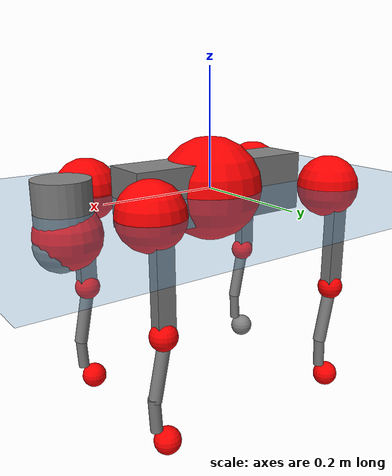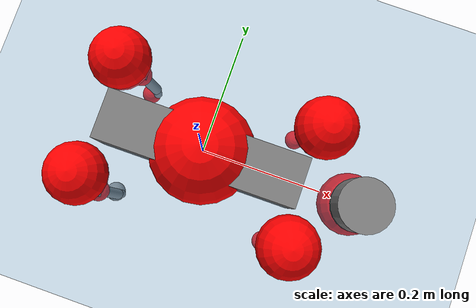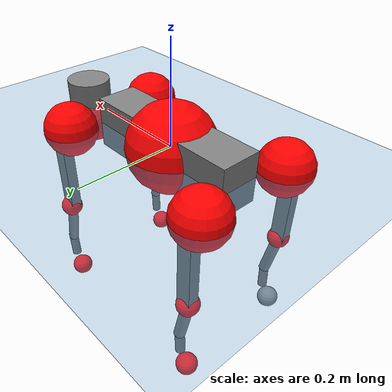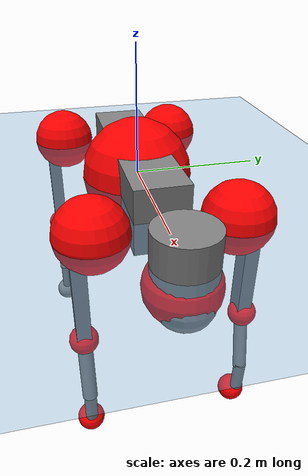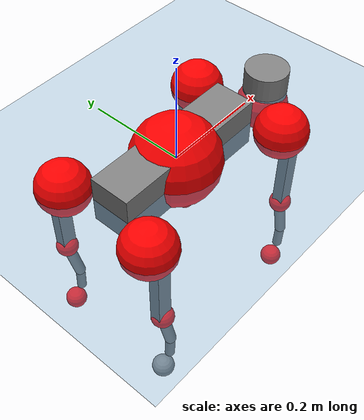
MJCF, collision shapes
<mujoco model="go2">
  <compiler angle="radian" assetdir="assets" balanceinertia="true" inertiafromgeom="false"/>

  <option timestep="0.005" density="1.2" viscosity="2e-05"/>

  <size nkey="1"/>

  <visual>
    <quality shadowsize="8192"/>
    <map shadowclip="0.5"/>
  </visual>

  <default>
    <default class="/">
      <geom contype="0" conaffinity="0" group="1" solref="-1000 -80"/>
      <site size="0.01 0.005 0.005" group="5"/>
      <general forcelimited="true" biastype="affine" gainprm="20" biasprm="0 -20 -0.5"/>
      <default class="go2">
        <joint armature="0.01" damping="0.01" frictionloss="0.2"/>
        <geom condim="1" margin="0.001"/>
        <default class="visual">
          <geom type="mesh" group="2"/>
        </default>
        <default class="collision">
          <geom group="3"/>
          <default class="foot">
            <geom size="0.022 0 0" condim="6" priority="1" friction="0.8 0.02 0.01" solimp="0.015 1 0.022"/>
          </default>
        </default>
        <default class="reward_collision_sphere">
          <geom group="5" rgba="1 0 0 1"/>
        </default>
      </default>
    </default>
  </default>

  <asset>
    <texture type="skybox" colorspace="auto" name="//unnamed_texture_0" builtin="gradient" rgb1="0.95 0.95 0.95" rgb2="0.95 0.95 0.95" width="100" height="600"/>
    <texture type="2d" colorspace="auto" name="texplane" builtin="checker" rgb1="0.345 0.575 0.748" rgb2="0.345 0.575 0.748" markrgb="1 1 1" width="512" height="512"/>
    <material name="MatPlane" class="/" texture="texplane" texuniform="true" texrepeat="2 2" specular="0.9"/>
    <material name="metal" class="/" rgba="0.9 0.95 0.95 1"/>
    <material name="black" class="/" rgba="0 0 0 1"/>
    <material name="white" class="/"/>
    <material name="gray" class="/" rgba="0.671705 0.692426 0.77427 1"/>
    <mesh name="base_0" class="/" file="base_0.obj"/>
    <mesh name="base_1" class="/" file="base_1.obj"/>
    <mesh name="base_2" class="/" file="base_2.obj"/>
    <mesh name="base_3" class="/" file="base_3.obj"/>
    <mesh name="base_4" class="/" file="base_4.obj"/>
    <mesh name="hip_0" class="/" file="hip_0.obj"/>
    <mesh name="hip_1" class="/" file="hip_1.obj"/>
    <mesh name="thigh_0" class="/" file="thigh_0.obj"/>
    <mesh name="thigh_1" class="/" file="thigh_1.obj"/>
    <mesh name="thigh_mirror_0" class="/" file="thigh_mirror_0.obj"/>
    <mesh name="thigh_mirror_1" class="/" file="thigh_mirror_1.obj"/>
    <mesh name="calf_0" class="/" file="calf_0.obj"/>
    <mesh name="calf_1" class="/" file="calf_1.obj"/>
    <mesh name="calf_mirror_0" class="/" file="calf_mirror_0.obj"/>
    <mesh name="calf_mirror_1" class="/" file="calf_mirror_1.obj"/>
    <mesh name="foot" class="/" file="foot.obj"/>
  </asset>

  <worldbody>
    <geom name="floor" class="/" size="100 100 0.125" type="plane" group="0" material="MatPlane"/>
    <light name="toplight_shadow" class="/" pos="0 0 5" dir="0.0990148 0.0990148 -0.990148" type="directional" ambient="0.04 0.04 0.04" diffuse="0.55 0.55 0.55" specular="0.12 0.12 0.12"/>
    <light name="toplight_fill" class="/" pos="0 0 5" dir="0.0990148 0.0990148 -0.990148" type="directional" castshadow="false" ambient="0.04 0.04 0.04" diffuse="0.3 0.3 0.3" specular="0.08 0.08 0.08"/>
    <body name="trunk" childclass="go2" pos="-0.00176556 -0.000528869 -0.00036757" quat="1 0.000130761 1.16423e-05 0.000619794">
      <inertial pos="0.0191765 0.000368813 -0.00420559" quat="0.00424218 0.707267 -0.00727231 0.706897" mass="4.73293" diaginertia="0.0786876 0.0502167 0.0104907"/>
      <joint name="//unnamed_joint_0" type="free" armature="0" damping="0" frictionloss="0"/>
      <geom name="//unnamed_geom_1" class="visual" material="black" mesh="base_0"/>
      <geom name="//unnamed_geom_2" class="visual" material="black" mesh="base_1"/>
      <geom name="//unnamed_geom_3" class="visual" material="black" mesh="base_2"/>
      <geom name="//unnamed_geom_4" class="visual" material="white" mesh="base_3"/>
      <geom name="//unnamed_geom_5" class="visual" material="gray" mesh="base_4"/>
      <geom name="trunk_1" class="collision" size="0.166323 0.0413376 0.0504009" type="box"/>
      <geom name="trunk_2" class="collision" size="0.0442113 0.0397902" pos="0.266962 0 0.00841237" type="cylinder"/>
      <geom name="trunk_3" class="collision" size="0.0415586" pos="0.274456 0 -0.0504742"/>
      <geom name="//unnamed_geom_9" class="reward_collision_sphere" size="0.0884226"/>
      <geom name="//unnamed_geom_10" class="reward_collision_sphere" size="0.0530536" pos="0.262279 0 -0.0378557"/>
      <site name="imu" pos="-0.020322 -0.0130589 0.0388989" size="0.00884226"/>
      <camera name="track" pos="0 -1.74946 0" quat="0.707107 0.707107 0 0" mode="trackcom"/>
      <camera name="ego_camera" pos="0.292253 0 0.0378557" quat="-0.5 -0.5 0.5 0.5"/>
      <body name="FL_hip" pos="0.180389 0.0421369 0.000813013" quat="0.999999 0.000369242 0.00143165 -8.60865e-05">
        <inertial pos="-0.00543385 0.00218293 0.000934732" quat="0.502631 0.492952 0.50302 0.50133" mass="0.48384" diaginertia="0.000659283 0.000314202 0.000210077"/>
        <joint name="FL_hip_joint" pos="0 0 0" axis="0.999953 0.00973648 -6.25017e-05" range="-0.995567 1.05508" armature="0.00977258" damping="0.000414356" frictionloss="0.182441"/>
        <geom name="//unnamed_geom_11" class="visual" material="metal" mesh="hip_0"/>
        <geom name="//unnamed_geom_12" class="visual" material="gray" mesh="hip_1"/>
        <geom name="//unnamed_geom_13" class="collision" size="0.0406744 0.0176845" pos="0 0.0699785 0" quat="0.707107 0.707107 0 0" type="cylinder"/>
        <geom name="//unnamed_geom_14" class="reward_collision_sphere" size="0.0530536" pos="0 0.0612312 0"/>
        <body name="FL_thigh" pos="-0.00143128 0.0843278 0.00119533" quat="1 -1.98598e-05 -4.90279e-05 -2.7812e-05">
          <inertial pos="-0.00389167 -0.0219531 -0.030065" quat="0.829622 0.0884059 -0.0233682 0.550786" mass="0.81013" diaginertia="0.00427679 0.00298679 0.000368427"/>
          <joint name="FL_thigh_joint" pos="0 0 0" axis="-0.000173388 1 -5.55249e-05" stiffness="0.00190057" range="-1.56974 3.54274" armature="0.00866157" damping="0" frictionloss="0.177057"/>
          <geom name="//unnamed_geom_15" class="visual" material="metal" mesh="thigh_0"/>
          <geom name="//unnamed_geom_16" class="visual" material="gray" mesh="thigh_1"/>
          <geom name="//unnamed_geom_17" class="collision" size="0.0941701 0.0108318 0.0150318" pos="0 0 -0.0895917" quat="0.707107 0 0.707107 0" type="box"/>
          <body name="FL_calf" pos="0.00240469 0.00244854 -0.177668" quat="1 4.65217e-05 7.12548e-05 -3.69032e-05">
            <inertial pos="0.00696633 -0.000935189 -0.117044" quat="0.71061 0.00171437 -0.00456013 0.703569" mass="0.172848" diaginertia="0.00109955 0.000761577 2.24779e-05"/>
            <joint name="FL_calf_joint" pos="0 0 0" axis="-0.00412174 0.999989 0.00232044" range="-2.69629 -0.886735" armature="0.00867988" damping="0" frictionloss="0.179544"/>
            <geom name="//unnamed_geom_18" class="visual" material="gray" mesh="calf_0"/>
            <geom name="//unnamed_geom_19" class="visual" material="black" mesh="calf_1"/>
            <geom name="FL_calf0" class="collision" size="0.0106107 0.0530536" pos="0.00749368 0 -0.0504742" quat="0.994493 0 -0.104807 0" type="cylinder"/>
            <geom name="//unnamed_geom_21" class="collision" size="0.00972649 0.0287373" pos="0.0187342 0 -0.124503" quat="0.999688 0 0.0249974 0" type="cylinder"/>
            <geom name="//unnamed_geom_22" class="visual" pos="0 0 -0.179183" quat="1 0 0 0" material="black" mesh="foot"/>
            <geom name="FL_foot" class="foot" size="0.0169422" pos="-0.00187342 0 -0.179183"/>
            <geom name="//unnamed_geom_24" class="reward_collision_sphere" size="0.0221057"/>
            <geom name="//unnamed_geom_25" class="reward_collision_sphere" size="0.0221057" pos="-0.00187342 0 -0.179183"/>
            <site name="FL_foot" class="foot" pos="-0.00187342 0 -0.179183" size="0.00884226"/>
          </body>
        </body>
      </body>
      <body name="FR_hip" pos="0.182359 -0.0395155 0.00294412" quat="1 -8.90884e-05 -0.000164127 -0.000225512">
        <inertial pos="-0.00380109 -0.00311752 0.000296985" quat="0.49108 0.515198 0.50132 0.492026" mass="0.484865" diaginertia="0.000654769 0.000314235 0.000206673"/>
        <joint name="FR_hip_joint" pos="0 0 0" axis="0.999993 -0.00334054 -0.00163459" range="-1.00998 1.05748" armature="0.00887759" damping="0.0135029" frictionloss="0.169921"/>
        <geom name="//unnamed_geom_26" class="visual" pos="0 2.9179e-10 1.25155e-08" quat="4.63268e-05 1 0 0" material="metal" mesh="hip_0"/>
        <geom name="//unnamed_geom_27" class="visual" pos="0 4.73027e-10 -3.09556e-08" quat="4.63268e-05 1 0 0" material="gray" mesh="hip_1"/>
        <geom name="//unnamed_geom_28" class="collision" size="0.0406744 0.0176845" pos="0 -0.0699785 0" quat="0.707107 0.707107 0 0" type="cylinder"/>
        <geom name="//unnamed_geom_29" class="reward_collision_sphere" size="0.0530536" pos="0 -0.0612312 0"/>
        <body name="FR_thigh" pos="0.000857779 -0.0832328 -0.00147842" quat="1 -0.000145034 -1.92304e-05 -0.000456307">
          <inertial pos="-0.00322492 0.019494 -0.0301037" quat="0.544331 -0.0117676 0.0896876 0.833979" mass="0.813495" diaginertia="0.00440517 0.0030939 0.000383009"/>
          <joint name="FR_thigh_joint" pos="0 0 0" axis="-0.00317264 -0.999994 0.00119918" stiffness="0.00213574" range="-3.54399 1.61335" armature="0.00793719" damping="0.0126007" frictionloss="0.167635"/>
          <geom name="//unnamed_geom_30" class="visual" material="metal" mesh="thigh_mirror_0"/>
          <geom name="//unnamed_geom_31" class="visual" material="gray" mesh="thigh_mirror_1"/>
          <geom name="//unnamed_geom_32" class="collision" size="0.0941701 0.0108318 0.0150318" pos="0 0 -0.0895917" quat="0.707107 0 0.707107 0" type="box"/>
          <body name="FR_calf" pos="-0.000564518 0.000145303 -0.179214" quat="1 9.11615e-05 -2.6698e-05 4.47802e-05">
            <inertial pos="0.00489905 0.00086178 -0.116549" quat="0.701903 -0.0037602 0.0036244 0.712253" mass="0.157266" diaginertia="0.00103599 0.000749348 2.09629e-05"/>
            <joint name="FR_calf_joint" pos="0 0 0" axis="0.00153601 -0.999987 0.00495542" stiffness="0.00261435" range="0.838858 2.71395" armature="0.00972378" damping="0.0143714" frictionloss="0.176174"/>
            <geom name="//unnamed_geom_33" class="visual" material="gray" mesh="calf_mirror_0"/>
            <geom name="//unnamed_geom_34" class="visual" material="black" mesh="calf_mirror_1"/>
            <geom name="FR_calf0" class="collision" size="0.0114949 0.0530536" pos="0.0093671 0 -0.0504742" quat="0.995004 0 -0.0998334 0" type="cylinder"/>
            <geom name="//unnamed_geom_36" class="collision" size="0.00972649 0.0287373" pos="0.0187342 0 -0.124503" quat="0.999688 0 0.0249974 0" type="cylinder"/>
            <geom name="//unnamed_geom_37" class="visual" pos="0 0 -0.179183" quat="1 0 0 0" material="black" mesh="foot"/>
            <geom name="FR_foot" class="foot" size="0.0212734" pos="-0.00187342 0 -0.179183"/>
            <geom name="//unnamed_geom_39" class="reward_collision_sphere" size="0.0221057"/>
            <geom name="//unnamed_geom_40" class="reward_collision_sphere" size="0.0221057" pos="-0.00187342 0 -0.179183"/>
            <site name="FR_foot" class="foot" pos="-0.00187342 0 -0.179183" size="0.00884226"/>
          </body>
        </body>
      </body>
      <body name="RL_hip" pos="-0.179993 0.0400763 -0.00178757" quat="1 -0.000235747 0.000167146 -3.69373e-05">
        <inertial pos="0.00488423 0.00224385 -0.00231154" quat="0.506288 0.497887 0.49545 0.50031" mass="0.485678" diaginertia="0.000659492 0.000300461 0.000203594"/>
        <joint name="RL_hip_joint" pos="0 0 0" axis="-0.999752 0.00991094 -0.0199406" range="-0.994331 1.09829" armature="0.00888133" damping="0" frictionloss="0.199826"/>
        <geom name="//unnamed_geom_41" class="visual" pos="-8.31719e-10 0 -1.63036e-07" quat="4.63268e-05 0 1 0" material="metal" mesh="hip_0"/>
        <geom name="//unnamed_geom_42" class="visual" pos="-1.34832e-09 0 -1.4459e-07" quat="4.63268e-05 0 1 0" material="gray" mesh="hip_1"/>
        <geom name="//unnamed_geom_43" class="collision" size="0.0406744 0.0176845" pos="0 0.0699785 0" quat="0.707107 0.707107 0 0" type="cylinder"/>
        <geom name="//unnamed_geom_44" class="reward_collision_sphere" size="0.0530536" pos="0 0.0612312 0"/>
        <body name="RL_thigh" pos="0.000661471 0.0841488 -0.000625459" quat="1 -3.44561e-06 -2.32847e-06 1.49427e-05">
          <inertial pos="-0.00600985 -0.0195096 -0.0302002" quat="0.823431 0.0793761 -0.018544 0.561531" mass="0.802148" diaginertia="0.00413245 0.00299775 0.000356784"/>
          <joint name="RL_thigh_joint" pos="0 0 0" axis="0.00850685 0.999874 -0.0134268" stiffness="0.00366256" range="-0.574711 4.55984" armature="0.00859639" damping="0.0026686" frictionloss="0.17661"/>
          <geom name="//unnamed_geom_45" class="visual" material="metal" mesh="thigh_0"/>
          <geom name="//unnamed_geom_46" class="visual" material="gray" mesh="thigh_1"/>
          <geom name="//unnamed_geom_47" class="collision" size="0.0941701 0.0108318 0.0150318" pos="0 0 -0.0895917" quat="0.707107 0 0.707107 0" type="box"/>
          <body name="RL_calf" pos="-0.000834824 -0.00138739 -0.181649" quat="1 -6.38591e-05 -2.64973e-05 -9.26502e-05">
            <inertial pos="0.00656658 -0.00153065 -0.117506" quat="0.70476 0.00426028 0.00237498 0.709429" mass="0.162131" diaginertia="0.00107148 0.000742811 2.25067e-05"/>
            <joint name="RL_calf_joint" pos="0 0 0" axis="0.00874158 0.999959 0.00251001" range="-2.741 -0.836353" armature="0.00881118" damping="0.000530768" frictionloss="0.185263"/>
            <geom name="//unnamed_geom_48" class="visual" material="gray" mesh="calf_0"/>
            <geom name="//unnamed_geom_49" class="visual" material="black" mesh="calf_1"/>
            <geom name="RL_calf0" class="collision" size="0.0114949 0.0530536" pos="0.0093671 0 -0.0504742" quat="0.995004 0 -0.0998334 0" type="cylinder"/>
            <geom name="//unnamed_geom_51" class="collision" size="0.00972649 0.0287373" pos="0.0187342 0 -0.124503" quat="0.999688 0 0.0249974 0" type="cylinder"/>
            <geom name="//unnamed_geom_52" class="visual" pos="0 0 -0.179183" quat="1 0 0 0" material="black" mesh="foot"/>
            <geom name="RL_foot" class="foot" size="0.01796" pos="-0.00187342 0 -0.179183"/>
            <geom name="//unnamed_geom_54" class="reward_collision_sphere" size="0.0221057"/>
            <geom name="//unnamed_geom_55" class="reward_collision_sphere" size="0.0221057" pos="-0.00187342 0 -0.179183"/>
            <site name="RL_foot" class="foot" pos="-0.00187342 0 -0.179183" size="0.00884226"/>
          </body>
        </body>
      </body>
      <body name="RR_hip" pos="-0.18107 -0.0410523 -0.000215733" quat="1 -3.89617e-05 1.30986e-05 3.31789e-05">
        <inertial pos="0.00531512 0.00095596 -0.00198205" quat="0.49931 0.497111 0.497916 0.505618" mass="0.452382" diaginertia="0.000622303 0.00029851 0.000195449"/>
        <joint name="RR_hip_joint" pos="0 0 0" axis="-0.999998 0.00140855 -0.00114728" range="-1.05484 1.00241" armature="0.00857244" damping="0" frictionloss="0.170774"/>
        <geom name="//unnamed_geom_56" class="visual" pos="8.29573e-10 2.9179e-10 -1.75552e-07" quat="2.14617e-09 4.63268e-05 4.63268e-05 -1" material="metal" mesh="hip_0"/>
        <geom name="//unnamed_geom_57" class="visual" pos="1.35362e-09 4.73027e-10 -1.13634e-07" quat="2.14617e-09 4.63268e-05 4.63268e-05 -1" material="gray" mesh="hip_1"/>
        <geom name="//unnamed_geom_58" class="collision" size="0.0406744 0.0176845" pos="0 -0.0699785 0" quat="0.707107 0.707107 0 0" type="cylinder"/>
        <geom name="//unnamed_geom_59" class="reward_collision_sphere" size="0.0530536" pos="0 -0.0612312 0"/>
        <body name="RR_thigh" pos="-0.00100789 -0.084659 0.00180579" quat="1 9.99014e-05 -0.000133187 0.000406266">
          <inertial pos="-0.00453029 0.0215008 -0.0275046" quat="0.550971 -0.0192675 0.0846734 0.829994" mass="0.751016" diaginertia="0.00416599 0.00290255 0.000369676"/>
          <joint name="RR_thigh_joint" pos="0 0 0" axis="0.00574133 -0.99998 -0.00282557" stiffness="0.00650308" range="-4.59057 0.575658" armature="0.00913094" damping="0.0118539" frictionloss="0.156011"/>
          <geom name="//unnamed_geom_60" class="visual" material="metal" mesh="thigh_mirror_0"/>
          <geom name="//unnamed_geom_61" class="visual" material="gray" mesh="thigh_mirror_1"/>
          <geom name="//unnamed_geom_62" class="collision" size="0.0941701 0.0108318 0.0150318" pos="0 0 -0.0895917" quat="0.707107 0 0.707107 0" type="box"/>
          <body name="RR_calf" pos="0.00315223 -0.00139535 -0.180108" quat="1 -0.00029049 5.30823e-05 -0.000329027">
            <inertial pos="0.00495011 0.000665727 -0.119212" quat="0.704843 -0.00700041 0.00130449 0.709327" mass="0.159672" diaginertia="0.00106792 0.000733656 2.20951e-05"/>
            <joint name="RR_calf_joint" pos="0 0 0" axis="-0.000663366 -0.999999 0.00128735" range="0.829049 2.74284" armature="0.00882783" damping="0.00366385" frictionloss="0.174816"/>
            <geom name="//unnamed_geom_63" class="visual" material="gray" mesh="calf_mirror_0"/>
            <geom name="//unnamed_geom_64" class="visual" material="black" mesh="calf_mirror_1"/>
            <geom name="RR_calf0" class="collision" size="0.0114949 0.0530536" pos="0.0093671 0 -0.0504742" quat="0.995004 0 -0.0998334 0" type="cylinder"/>
            <geom name="//unnamed_geom_66" class="collision" size="0.00972649 0.0287373" pos="0.0187342 0 -0.124503" quat="0.999688 0 0.0249974 0" type="cylinder"/>
            <geom name="//unnamed_geom_67" class="visual" pos="0 0 -0.179183" quat="1 0 0 0" material="black" mesh="foot"/>
            <geom name="RR_foot" class="foot" size="0.0224091" pos="-0.00187342 0 -0.179183"/>
            <geom name="//unnamed_geom_69" class="reward_collision_sphere" size="0.0221057"/>
            <geom name="//unnamed_geom_70" class="reward_collision_sphere" size="0.0221057" pos="-0.00187342 0 -0.179183"/>
            <site name="RR_foot" class="foot" pos="-0.00187342 0 -0.179183" size="0.00884226"/>
          </body>
        </body>
      </body>
    </body>
  </worldbody>

  <contact>
    <pair class="/" geom1="floor" geom2="FL_foot" name="//unnamed_contact_0"/>
    <pair class="/" geom1="floor" geom2="FR_foot" name="//unnamed_contact_1"/>
    <pair class="/" geom1="floor" geom2="RL_foot" name="//unnamed_contact_2"/>
    <pair class="/" geom1="floor" geom2="RR_foot" name="//unnamed_contact_3"/>
  </contact>

  <actuator>
    <general name="FL_hip" class="/" joint="FL_hip_joint" forcerange="-20.4157 20.4157" gainprm="18.1446" biasprm="0 -18.1446 -0.470634"/>
    <general name="FL_thigh" class="/" joint="FL_thigh_joint" forcerange="-22.9154 22.9154" gainprm="18.1446" biasprm="0 -18.1446 -0.470634"/>
    <general name="FL_calf" class="/" joint="FL_calf_joint" forcerange="-36.1695 36.1695" gainprm="18.1446" biasprm="0 -18.1446 -0.470634"/>
    <general name="FR_hip" class="/" joint="FR_hip_joint" forcerange="-20.9679 20.9679" gainprm="18.1446" biasprm="0 -18.1446 -0.470634"/>
    <general name="FR_thigh" class="/" joint="FR_thigh_joint" forcerange="-21.6649 21.6649" gainprm="18.1446" biasprm="0 -18.1446 -0.470634"/>
    <general name="FR_calf" class="/" joint="FR_calf_joint" forcerange="-43.3258 43.3258" gainprm="18.1446" biasprm="0 -18.1446 -0.470634"/>
    <general name="RL_hip" class="/" joint="RL_hip_joint" forcerange="-22.9669 22.9669" gainprm="18.1446" biasprm="0 -18.1446 -0.470634"/>
    <general name="RL_thigh" class="/" joint="RL_thigh_joint" forcerange="-21.234 21.234" gainprm="18.1446" biasprm="0 -18.1446 -0.470634"/>
    <general name="RL_calf" class="/" joint="RL_calf_joint" forcerange="-41.0035 41.0035" gainprm="18.1446" biasprm="0 -18.1446 -0.470634"/>
    <general name="RR_hip" class="/" joint="RR_hip_joint" forcerange="-20.5274 20.5274" gainprm="18.1446" biasprm="0 -18.1446 -0.470634"/>
    <general name="RR_thigh" class="/" joint="RR_thigh_joint" forcerange="-18.9045 18.9045" gainprm="18.1446" biasprm="0 -18.1446 -0.470634"/>
    <general name="RR_calf" class="/" joint="RR_calf_joint" forcerange="-36.8097 36.8097" gainprm="18.1446" biasprm="0 -18.1446 -0.470634"/>
  </actuator>

  <sensor>
    <gyro site="imu" name="imu_angular_velocity"/>
    <velocimeter site="imu" name="imu_linear_velocity"/>
    <framelinvel objtype="site" objname="FL_foot" name="FL_foot_global_linear_velocity"/>
    <framelinvel objtype="site" objname="FR_foot" name="FR_foot_global_linear_velocity"/>
    <framelinvel objtype="site" objname="RL_foot" name="RL_foot_global_linear_velocity"/>
    <framelinvel objtype="site" objname="RR_foot" name="RR_foot_global_linear_velocity"/>
  </sensor>

  <keyframe>
    <key name="home" qpos="0 0 0.325 1 0 0 0 0.1 0.8 -1.5 -0.1 -0.8 1.5 -0.1 0.8 -1.5 0.1 -0.8 1.5"/>
  </keyframe>
</mujoco>
